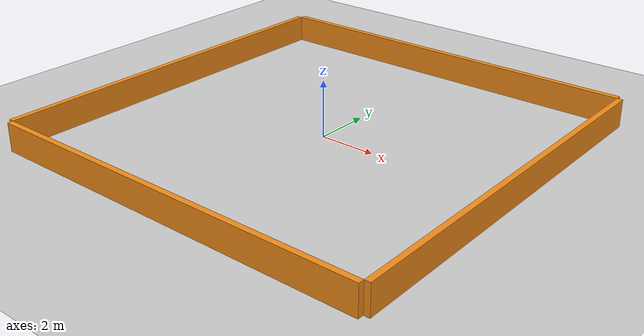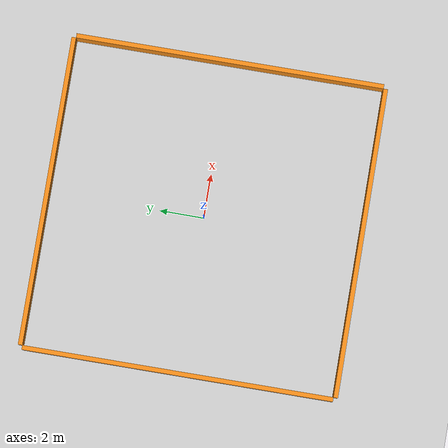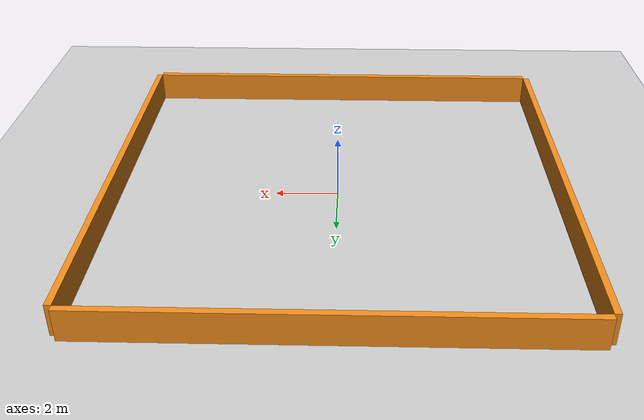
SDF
<sdf version='1.6'>
  <world name='default'>
    <scene>
      <shadows>0</shadows>
      <ambient>0.8 0.8 0.8 1</ambient>
      <background>1 1 1 1</background>
      <grid>1</grid>
      <origin_visual>1</origin_visual>
    </scene>
    <physics name='default_physics' default='0' type='ode'>
      <max_step_size>0.001</max_step_size>
      <real_time_factor>1</real_time_factor>
      <real_time_update_rate>500</real_time_update_rate>
    </physics>

     <model name='ground_plane'>
      <static>1</static>
      <link name='link'>
        <collision name='collision'>
          <geometry>
            <plane>
              <normal>0 0 1</normal>
              <size>50 50</size>
            </plane>
          </geometry>
          <surface>
            <friction>
              <ode>
                <mu>100</mu>
                <mu2>50</mu2>
              </ode>
              <torsional>
                <ode/>
              </torsional>
            </friction>
            <bounce/>
            <contact>
              <ode/>
            </contact>
          </surface>
          <max_contacts>10</max_contacts>
        </collision>
        <visual name='visual'>
          <cast_shadows>0</cast_shadows>
          <geometry>
            <plane>
              <normal>0 0 1</normal>
              <size>100 100</size>
            </plane>
          </geometry>
          <material>
            <script>
              <name>Gazebo/Grey</name>
              <uri>file://media/materials/scripts/gazebo.material</uri>
            </script>
          </material>
        </visual>
        <velocity_decay>
          <linear>0</linear>
          <angular>0</angular>
        </velocity_decay>
        <self_collide>0</self_collide>
        <kinematic>0</kinematic>
        <gravity>1</gravity>
        <enable_wind>0</enable_wind>
      </link>
    </model>

    <gui fullscreen='0'>
      <camera name='world_camera'>
        <pose frame=''>0.0 0.0 30.0 3.14159 1.57079 3.14159</pose>
        <view_controller>ortho</view_controller>
        <projection_type>orthographic</projection_type>
      </camera>
    </gui>

    <gravity>0 0 -9.8</gravity>
    <magnetic_field>6e-06 2.3e-05 -4.2e-05</magnetic_field>
    <atmosphere type='adiabatic'/>
    <audio>
      <device>default</device>
    </audio>
    <wind/>
    <spherical_coordinates>
      <surface_model>EARTH_WGS84</surface_model>
      <latitude_deg>0</latitude_deg>
      <longitude_deg>0</longitude_deg>
      <elevation>0</elevation>
      <heading_deg>0</heading_deg>
    </spherical_coordinates>

    <model name='outer_barrier_1'>
      <pose frame=''>-7.1 0 0.5 0 -0 0</pose>
      <static>1</static>
      <link name='link'>
        <inertial>
          <mass>1</mass>
          <inertia>
            <ixx>0.166667</ixx>
            <ixy>0</ixy>
            <ixz>0</ixz>
            <iyy>0.166667</iyy>
            <iyz>0</iyz>
            <izz>0.166667</izz>
          </inertia>
        </inertial>
        <collision name='collision'>
          <geometry>
            <box>
              <size>0.2 14 1</size>
            </box>
          </geometry>
          <max_contacts>10</max_contacts>
          <surface>
            <contact>
              <ode/>
            </contact>
            <bounce/>
            <friction>
              <torsional>
                <ode/>
              </torsional>
              <ode/>
            </friction>
          </surface>
        </collision>
        <visual name='visual'>
          <geometry>
            <box>
              <size>0.2 14 1</size>
            </box>
          </geometry>
          <material>
            <script>
              <name>Gazebo/Orange</name>
              <uri>file://media/materials/scripts/gazebo.material</uri>
            </script>
          </material>
        </visual>
        <self_collide>0</self_collide>
        <enable_wind>0</enable_wind>
        <kinematic>0</kinematic>
      </link>
    </model>

    <model name='outer_barrier_2'>
      <pose frame=''>7.1 0 0.5 0 -0 0</pose>
      <static>1</static>
      <link name='link'>
        <inertial>
          <mass>1</mass>
          <inertia>
            <ixx>0.166667</ixx>
            <ixy>0</ixy>
            <ixz>0</ixz>
            <iyy>0.166667</iyy>
            <iyz>0</iyz>
            <izz>0.166667</izz>
          </inertia>
        </inertial>
        <collision name='collision'>
          <geometry>
            <box>
              <size>0.2 14 1</size>
            </box>
          </geometry>
          <max_contacts>10</max_contacts>
          <surface>
            <contact>
              <ode/>
            </contact>
            <bounce/>
            <friction>
              <torsional>
                <ode/>
              </torsional>
              <ode/>
            </friction>
          </surface>
        </collision>
        <visual name='visual'>
          <geometry>
            <box>
              <size>0.2 14 1</size>
            </box>
          </geometry>
          <material>
            <script>
              <name>Gazebo/Orange</name>
              <uri>file://media/materials/scripts/gazebo.material</uri>
            </script>
          </material>
        </visual>
        <self_collide>0</self_collide>
        <enable_wind>0</enable_wind>
        <kinematic>0</kinematic>
      </link>
    </model>

    <model name='outer_barrier_3'>
      <pose frame=''>0 7.1 0.5 0 -0 1.5708</pose>
      <static>1</static>
      <link name='link'>
        <inertial>
          <mass>1</mass>
          <inertia>
            <ixx>0.166667</ixx>
            <ixy>0</ixy>
            <ixz>0</ixz>
            <iyy>0.166667</iyy>
            <iyz>0</iyz>
            <izz>0.166667</izz>
          </inertia>
        </inertial>
        <collision name='collision'>
          <geometry>
            <box>
              <size>0.2 14 1</size>
            </box>
          </geometry>
          <max_contacts>10</max_contacts>
          <surface>
            <contact>
              <ode/>
            </contact>
            <bounce/>
            <friction>
              <torsional>
                <ode/>
              </torsional>
              <ode/>
            </friction>
          </surface>
        </collision>
        <visual name='visual'>
          <geometry>
            <box>
              <size>0.2 14 1</size>
            </box>
          </geometry>
          <material>
            <script>
              <name>Gazebo/Orange</name>
              <uri>file://media/materials/scripts/gazebo.material</uri>
            </script>
          </material>
        </visual>
        <self_collide>0</self_collide>
        <enable_wind>0</enable_wind>
        <kinematic>0</kinematic>
      </link>
    </model>

    <model name='outer_barrier_4'>
      <pose frame=''>0 -7.1 0.5 0 -0 1.5708</pose>
      <static>1</static>
      <link name='link'>
        <inertial>
          <mass>1</mass>
          <inertia>
            <ixx>0.166667</ixx>
            <ixy>0</ixy>
            <ixz>0</ixz>
            <iyy>0.166667</iyy>
            <iyz>0</iyz>
            <izz>0.166667</izz>
          </inertia>
        </inertial>
        <collision name='collision'>
          <geometry>
            <box>
              <size>0.2 14 1</size>
            </box>
          </geometry>
          <max_contacts>10</max_contacts>
          <surface>
            <contact>
              <ode/>
            </contact>
            <bounce/>
            <friction>
              <torsional>
                <ode/>
              </torsional>
              <ode/>
            </friction>
          </surface>
        </collision>
        <visual name='visual'>
          <geometry>
            <box>
              <size>0.2 14 1</size>
            </box>
          </geometry>
          <material>
            <script>
              <name>Gazebo/Orange</name>
              <uri>file://media/materials/scripts/gazebo.material</uri>
            </script>
          </material>
        </visual>
        <self_collide>0</self_collide>
        <enable_wind>0</enable_wind>
        <kinematic>0</kinematic>
      </link>
    </model>

  </world>
</sdf>
